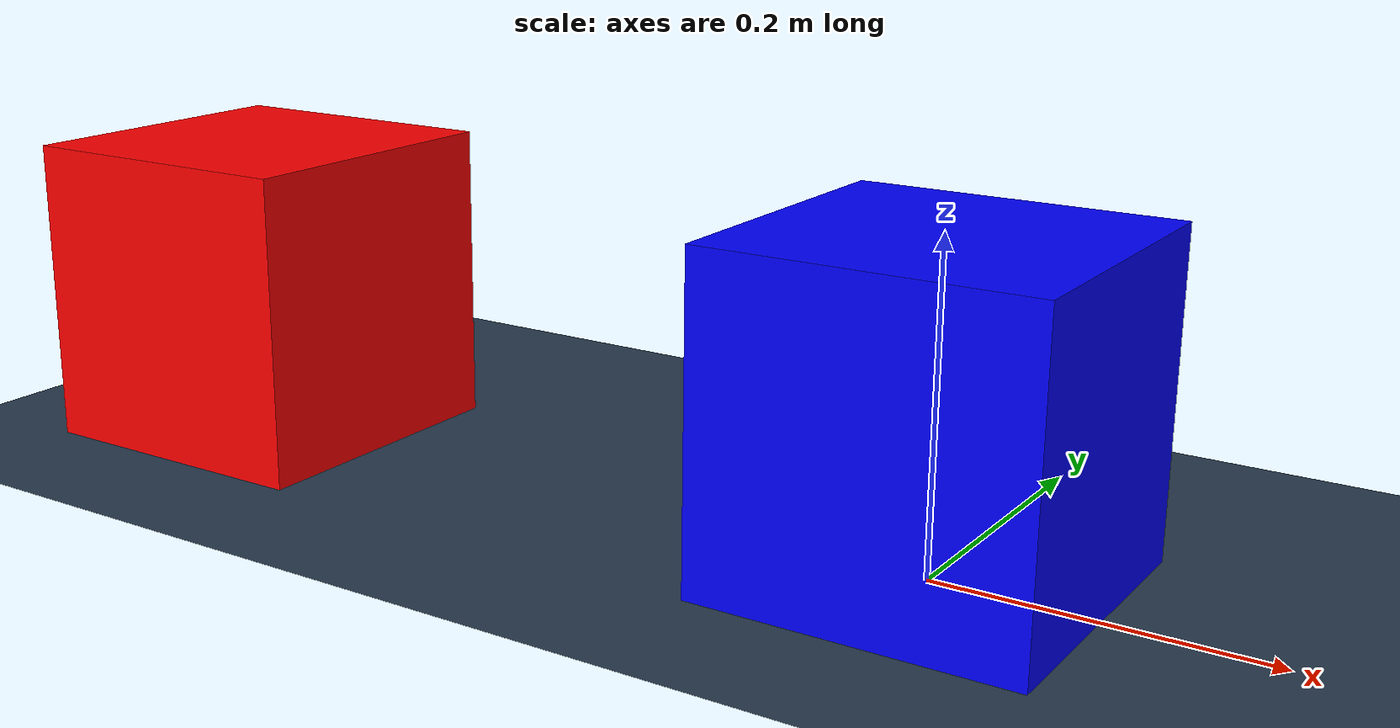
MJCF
<mujoco>

    <asset>
      <texture name="plane" type="2d" builtin="checker" rgb1=".2 .3 .4" rgb2=".1 0.15 0.2" width="256" height="256" mark="cross" markrgb=".8 .8 .8" />
      <material name="plane" reflectance="0.3" texture="plane" texrepeat="1 1" texuniform="true" />
    </asset>

    <worldbody>
        <light directional="true" diffuse=".2 .2 .2" specular="0 0 0" pos="0 1 5" dir="0 -1 -1" castshadow="false"/>
        <light directional="false" diffuse=".8 .8 .8" specular="0.3 0.3 0.3" pos="0 -1 4" dir="0 0 -1" />
        <light directional="true" diffuse="0 0 0" specular=".7 .7 .7" pos="0 3 3" dir="0 -3 -3" />
        <geom name="floor" pos="0 0 -.0" group="1" size="0 0 .1" type="plane" material="plane" condim="3" />

        <body name="box_1" pos="-0.5 0 0.1">
            <geom type="box" size="0.1 0.1 0.1" rgba="1.0 0 0 1"/>
            <joint type="hinge" axis="0 0 1"/>
        </body>

        <body name="box_2" pos="0 0 0.1">
            <geom type="box" size="0.1 0.1 0.1" rgba="0 0 1 1"/>
            <joint type="slide" axis="1 0 0"/>
            <joint type="slide" axis="0 1 0"/>
        </body>
    </worldbody>
</mujoco>
